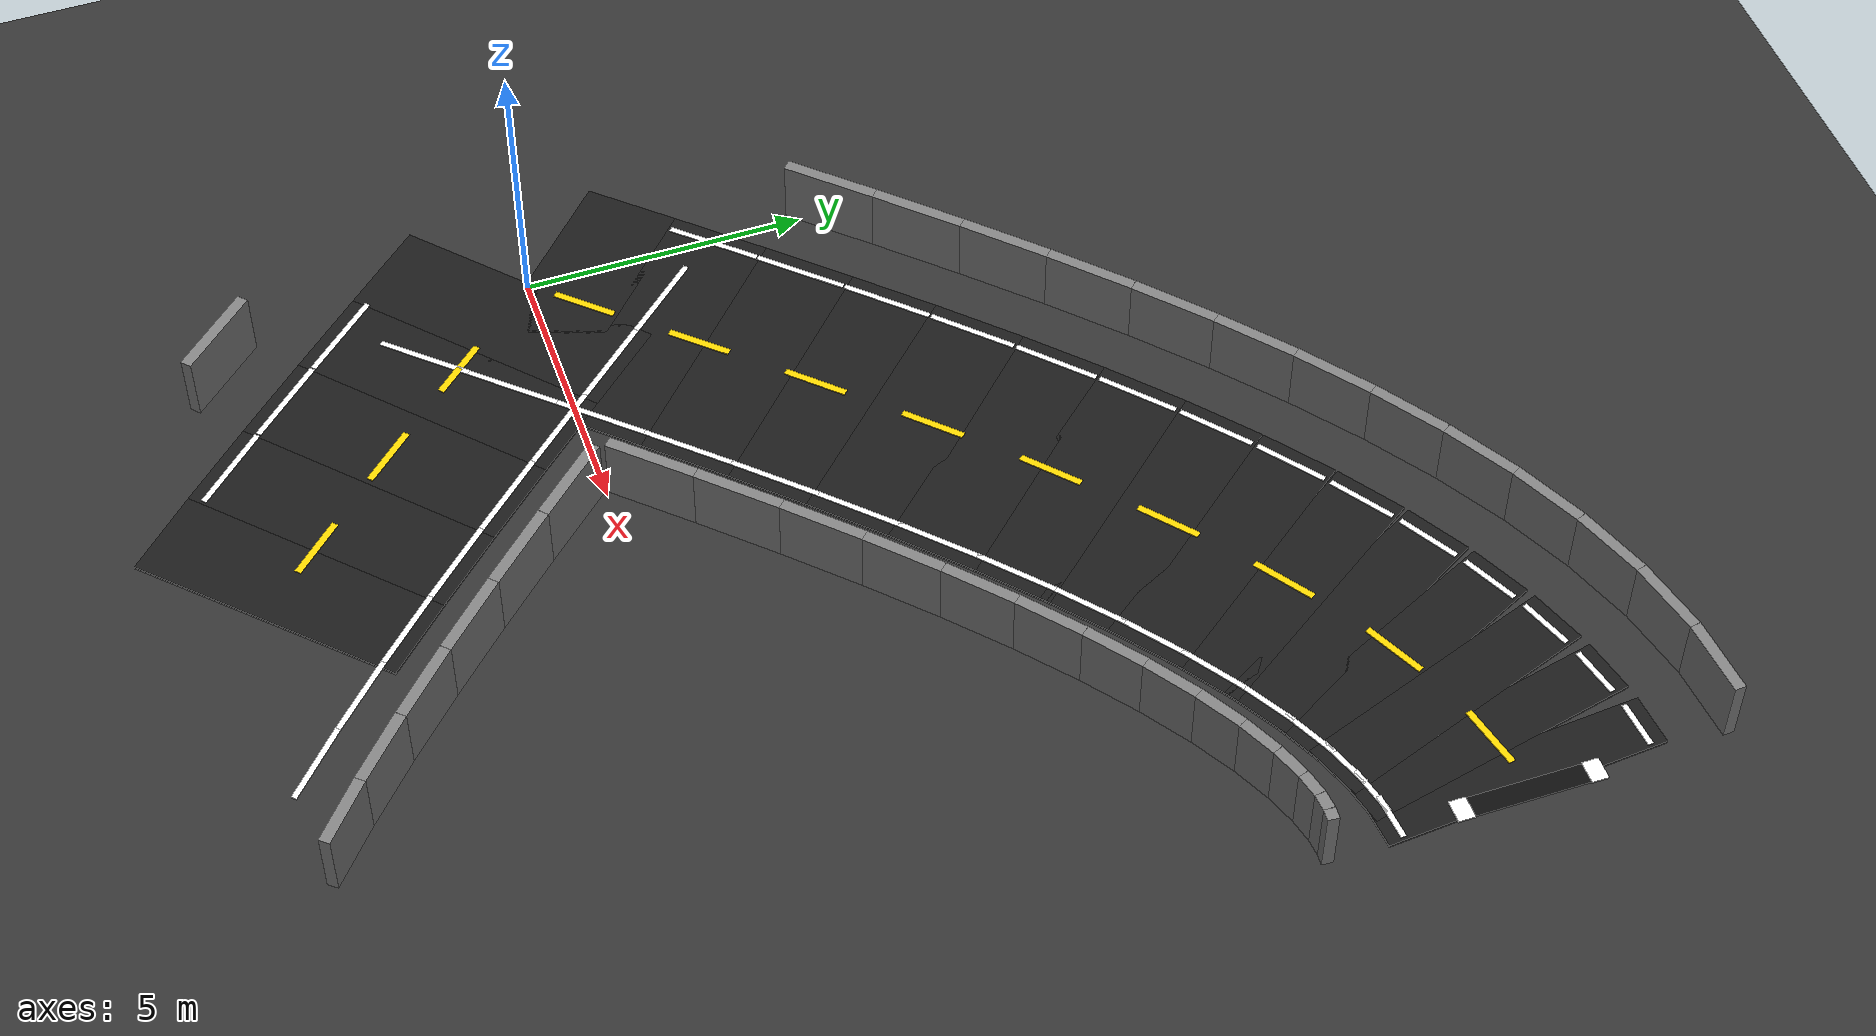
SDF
<sdf version="1.6">
 <world name="adas_figure8_circuit">
  <model name="ground">
   <static>true</static>
   <link name="link">
    <collision name="collision">
     <geometry><plane><normal>0 0 1</normal><size>80.0 80.0</size></plane></geometry>
    </collision>
    <visual name="visual">
     <geometry><plane><normal>0 0 1</normal><size>80.0 80.0</size></plane></geometry>
     <material><ambient>0.16 0.16 0.16 1</ambient><diffuse>0.20 0.20 0.20 1</diffuse></material>
    </visual>
   </link>
  </model>
  <model name="road_000">
   <static>true</static>
   <pose>0.5757 0.6272 0.025 0 0 0.828166</pose>
   <link name="link">
    <collision name="collision"><geometry><box><size>1.8027 5.000 0.05</size></box></geometry></collision>
    <visual name="visual">
     <geometry><box><size>1.8027 5.000 0.05</size></box></geometry>
     <material><ambient>0.07 0.07 0.07 1</ambient><diffuse>0.10 0.10 0.10 1</diffuse></material>
    </visual>
   </link>
  </model>
  <model name="road_001">
   <static>true</static>
   <pose>1.7255 1.8746 0.025 0 0 0.824044</pose>
   <link name="link">
    <collision name="collision"><geometry><box><size>1.7904 5.000 0.05</size></box></geometry></collision>
    <visual name="visual">
     <geometry><box><size>1.7904 5.000 0.05</size></box></geometry>
     <material><ambient>0.07 0.07 0.07 1</ambient><diffuse>0.10 0.10 0.10 1</diffuse></material>
    </visual>
   </link>
  </model>
  <model name="road_002">
   <static>true</static>
   <pose>2.8706 3.1016 0.025 0 0 0.815676</pose>
   <link name="link">
    <collision name="collision"><geometry><box><size>1.7661 5.000 0.05</size></box></geometry></collision>
    <visual name="visual">
     <geometry><box><size>1.7661 5.000 0.05</size></box></geometry>
     <material><ambient>0.07 0.07 0.07 1</ambient><diffuse>0.10 0.10 0.10 1</diffuse></material>
    </visual>
   </link>
  </model>
  <model name="road_003">
   <static>true</static>
   <pose>4.0078 4.2945 0.025 0 0 0.802808</pose>
   <link name="link">
    <collision name="collision"><geometry><box><size>1.7302 5.000 0.05</size></box></geometry></collision>
    <visual name="visual">
     <geometry><box><size>1.7302 5.000 0.05</size></box></geometry>
     <material><ambient>0.07 0.07 0.07 1</ambient><diffuse>0.10 0.10 0.10 1</diffuse></material>
    </visual>
   </link>
  </model>
  <model name="road_004">
   <static>true</static>
   <pose>5.1340 5.4404 0.025 0 0 0.785040</pose>
   <link name="link">
    <collision name="collision"><geometry><box><size>1.6833 5.000 0.05</size></box></geometry></collision>
    <visual name="visual">
     <geometry><box><size>1.6833 5.000 0.05</size></box></geometry>
     <material><ambient>0.07 0.07 0.07 1</ambient><diffuse>0.10 0.10 0.10 1</diffuse></material>
    </visual>
   </link>
  </model>
  <model name="road_005">
   <static>true</static>
   <pose>6.2462 6.5267 0.025 0 0 0.761799</pose>
   <link name="link">
    <collision name="collision"><geometry><box><size>1.6262 5.000 0.05</size></box></geometry></collision>
    <visual name="visual">
     <geometry><box><size>1.6262 5.000 0.05</size></box></geometry>
     <material><ambient>0.07 0.07 0.07 1</ambient><diffuse>0.10 0.10 0.10 1</diffuse></material>
    </visual>
   </link>
  </model>
  <model name="road_006">
   <static>true</static>
   <pose>7.3412 7.5415 0.025 0 0 0.732304</pose>
   <link name="link">
    <collision name="collision"><geometry><box><size>1.5600 5.000 0.05</size></box></geometry></collision>
    <visual name="visual">
     <geometry><box><size>1.5600 5.000 0.05</size></box></geometry>
     <material><ambient>0.07 0.07 0.07 1</ambient><diffuse>0.10 0.10 0.10 1</diffuse></material>
    </visual>
   </link>
  </model>
  <model name="road_007">
   <static>true</static>
   <pose>8.4162 8.4737 0.025 0 0 0.695520</pose>
   <link name="link">
    <collision name="collision"><geometry><box><size>1.4861 5.000 0.05</size></box></geometry></collision>
    <visual name="visual">
     <geometry><box><size>1.4861 5.000 0.05</size></box></geometry>
     <material><ambient>0.07 0.07 0.07 1</ambient><diffuse>0.10 0.10 0.10 1</diffuse></material>
    </visual>
   </link>
  </model>
  <model name="road_008">
   <static>true</static>
   <pose>9.4680 9.3130 0.025 0 0 0.650103</pose>
   <link name="link">
    <collision name="collision"><geometry><box><size>1.4060 5.000 0.05</size></box></geometry></collision>
    <visual name="visual">
     <geometry><box><size>1.4060 5.000 0.05</size></box></geometry>
     <material><ambient>0.07 0.07 0.07 1</ambient><diffuse>0.10 0.10 0.10 1</diffuse></material>
    </visual>
   </link>
  </model>
  <model name="road_009">
   <static>true</static>
   <pose>10.4939 10.0503 0.025 0 0 0.594333</pose>
   <link name="link">
    <collision name="collision"><geometry><box><size>1.3217 5.000 0.05</size></box></geometry></collision>
    <visual name="visual">
     <geometry><box><size>1.3217 5.000 0.05</size></box></geometry>
     <material><ambient>0.07 0.07 0.07 1</ambient><diffuse>0.10 0.10 0.10 1</diffuse></material>
    </visual>
   </link>
  </model>
  <model name="road_010">
   <static>true</static>
   <pose>11.4910 10.6774 0.025 0 0 0.526076</pose>
   <link name="link">
    <collision name="collision"><geometry><box><size>1.2356 5.000 0.05</size></box></geometry></collision>
    <visual name="visual">
     <geometry><box><size>1.2356 5.000 0.05</size></box></geometry>
     <material><ambient>0.07 0.07 0.07 1</ambient><diffuse>0.10 0.10 0.10 1</diffuse></material>
    </visual>
   </link>
  </model>
  <model name="road_011">
   <static>true</static>
   <pose>12.4567 11.1876 0.025 0 0 0.442808</pose>
   <link name="link">
    <collision name="collision"><geometry><box><size>1.1505 5.000 0.05</size></box></geometry></collision>
    <visual name="visual">
     <geometry><box><size>1.1505 5.000 0.05</size></box></geometry>
     <material><ambient>0.07 0.07 0.07 1</ambient><diffuse>0.10 0.10 0.10 1</diffuse></material>
    </visual>
   </link>
  </model>
  <model name="road_012">
   <static>true</static>
   <pose>13.3882 11.5752 0.025 0 0 0.341806</pose>
   <link name="link">
    <collision name="collision"><geometry><box><size>1.0699 5.000 0.05</size></box></geometry></collision>
    <visual name="visual">
     <geometry><box><size>1.0699 5.000 0.05</size></box></geometry>
     <material><ambient>0.07 0.07 0.07 1</ambient><diffuse>0.10 0.10 0.10 1</diffuse></material>
    </visual>
   </link>
  </model>
  <model name="road_013">
   <static>true</static>
   <pose>14.2830 11.8360 0.025 0 0 0.220696</pose>
   <link name="link">
    <collision name="collision"><geometry><box><size>0.9976 5.000 0.05</size></box></geometry></collision>
    <visual name="visual">
     <geometry><box><size>0.9976 5.000 0.05</size></box></geometry>
     <material><ambient>0.07 0.07 0.07 1</ambient><diffuse>0.10 0.10 0.10 1</diffuse></material>
    </visual>
   </link>
  </model>
  <model name="road_014">
   <static>true</static>
   <pose>15.1386 11.9671 0.025 0 0 0.078521</pose>
   <link name="link">
    <collision name="collision"><geometry><box><size>0.9381 5.000 0.05</size></box></geometry></collision>
    <visual name="visual">
     <geometry><box><size>0.9381 5.000 0.05</size></box></geometry>
     <material><ambient>0.07 0.07 0.07 1</ambient><diffuse>0.10 0.10 0.10 1</diffuse></material>
    </visual>
   </link>
  </model>
  <model name="road_055">
   <static>true</static>
   <pose>5.1340 -5.4404 0.025 0 0 2.356552</pose>
   <link name="link">
    <collision name="collision"><geometry><box><size>1.6833 5.000 0.05</size></box></geometry></collision>
    <visual name="visual">
     <geometry><box><size>1.6833 5.000 0.05</size></box></geometry>
     <material><ambient>0.07 0.07 0.07 1</ambient><diffuse>0.10 0.10 0.10 1</diffuse></material>
    </visual>
   </link>
  </model>
  <model name="road_056">
   <static>true</static>
   <pose>4.0078 -4.2945 0.025 0 0 2.338784</pose>
   <link name="link">
    <collision name="collision"><geometry><box><size>1.7302 5.000 0.05</size></box></geometry></collision>
    <visual name="visual">
     <geometry><box><size>1.7302 5.000 0.05</size></box></geometry>
     <material><ambient>0.07 0.07 0.07 1</ambient><diffuse>0.10 0.10 0.10 1</diffuse></material>
    </visual>
   </link>
  </model>
  <model name="road_057">
   <static>true</static>
   <pose>2.8706 -3.1016 0.025 0 0 2.325917</pose>
   <link name="link">
    <collision name="collision"><geometry><box><size>1.7661 5.000 0.05</size></box></geometry></collision>
    <visual name="visual">
     <geometry><box><size>1.7661 5.000 0.05</size></box></geometry>
     <material><ambient>0.07 0.07 0.07 1</ambient><diffuse>0.10 0.10 0.10 1</diffuse></material>
    </visual>
   </link>
  </model>
  <model name="road_058">
   <static>true</static>
   <pose>1.7255 -1.8746 0.025 0 0 2.317549</pose>
   <link name="link">
    <collision name="collision"><geometry><box><size>1.7904 5.000 0.05</size></box></geometry></collision>
    <visual name="visual">
     <geometry><box><size>1.7904 5.000 0.05</size></box></geometry>
     <material><ambient>0.07 0.07 0.07 1</ambient><diffuse>0.10 0.10 0.10 1</diffuse></material>
    </visual>
   </link>
  </model>
  <model name="road_059">
   <static>true</static>
   <pose>0.5757 -0.6272 0.025 0 0 2.313427</pose>
   <link name="link">
    <collision name="collision"><geometry><box><size>1.8027 5.000 0.05</size></box></geometry></collision>
    <visual name="visual">
     <geometry><box><size>1.8027 5.000 0.05</size></box></geometry>
     <material><ambient>0.07 0.07 0.07 1</ambient><diffuse>0.10 0.10 0.10 1</diffuse></material>
    </visual>
   </link>
  </model>
  <model name="center_dash_000">
   <static>true</static>
   <pose>0.7523 0.8196 0.058 0 0 0.828166</pose>
   <link name="link">
    <visual name="visual">
     <geometry><box><size>1.150 0.12 0.02</size></box></geometry>
     <material><ambient>1 0.82 0 1</ambient><diffuse>1 0.82 0 1</diffuse></material>
    </visual>
   </link>
  </model>
  <model name="center_dash_001">
   <static>true</static>
   <pose>2.2620 2.4543 0.058 0 0 0.824044</pose>
   <link name="link">
    <visual name="visual">
     <geometry><box><size>1.150 0.12 0.02</size></box></geometry>
     <material><ambient>1 0.82 0 1</ambient><diffuse>1 0.82 0 1</diffuse></material>
    </visual>
   </link>
  </model>
  <model name="center_dash_002">
   <static>true</static>
   <pose>3.7914 4.0704 0.058 0 0 0.802808</pose>
   <link name="link">
    <visual name="visual">
     <geometry><box><size>1.150 0.12 0.02</size></box></geometry>
     <material><ambient>1 0.82 0 1</ambient><diffuse>1 0.82 0 1</diffuse></material>
    </visual>
   </link>
  </model>
  <model name="center_dash_003">
   <static>true</static>
   <pose>5.3511 5.6573 0.058 0 0 0.785040</pose>
   <link name="link">
    <visual name="visual">
     <geometry><box><size>1.150 0.12 0.02</size></box></geometry>
     <material><ambient>1 0.82 0 1</ambient><diffuse>1 0.82 0 1</diffuse></material>
    </visual>
   </link>
  </model>
  <model name="center_dash_004">
   <static>true</static>
   <pose>6.9576 7.1966 0.058 0 0 0.732304</pose>
   <link name="link">
    <visual name="visual">
     <geometry><box><size>1.150 0.12 0.02</size></box></geometry>
     <material><ambient>1 0.82 0 1</ambient><diffuse>1 0.82 0 1</diffuse></material>
    </visual>
   </link>
  </model>
  <model name="center_dash_005">
   <static>true</static>
   <pose>8.6358 8.6570 0.058 0 0 0.695520</pose>
   <link name="link">
    <visual name="visual">
     <geometry><box><size>1.150 0.12 0.02</size></box></geometry>
     <material><ambient>1 0.82 0 1</ambient><diffuse>1 0.82 0 1</diffuse></material>
    </visual>
   </link>
  </model>
  <model name="center_dash_006">
   <static>true</static>
   <pose>10.4122 9.9951 0.058 0 0 0.594333</pose>
   <link name="link">
    <visual name="visual">
     <geometry><box><size>1.150 0.12 0.02</size></box></geometry>
     <material><ambient>1 0.82 0 1</ambient><diffuse>1 0.82 0 1</diffuse></material>
    </visual>
   </link>
  </model>
  <model name="center_dash_007">
   <static>true</static>
   <pose>12.3255 11.1254 0.058 0 0 0.442808</pose>
   <link name="link">
    <visual name="visual">
     <geometry><box><size>1.150 0.12 0.02</size></box></geometry>
     <material><ambient>1 0.82 0 1</ambient><diffuse>1 0.82 0 1</diffuse></material>
    </visual>
   </link>
  </model>
  <model name="center_dash_008">
   <static>true</static>
   <pose>14.4156 11.8658 0.058 0 0 0.220696</pose>
   <link name="link">
    <visual name="visual">
     <geometry><box><size>1.150 0.12 0.02</size></box></geometry>
     <material><ambient>1 0.82 0 1</ambient><diffuse>1 0.82 0 1</diffuse></material>
    </visual>
   </link>
  </model>
  <model name="center_dash_028">
   <static>true</static>
   <pose>4.5643 -4.8707 0.058 0 0 2.338784</pose>
   <link name="link">
    <visual name="visual">
     <geometry><box><size>1.150 0.12 0.02</size></box></geometry>
     <material><ambient>1 0.82 0 1</ambient><diffuse>1 0.82 0 1</diffuse></material>
    </visual>
   </link>
  </model>
  <model name="center_dash_029">
   <static>true</static>
   <pose>3.0242 -3.2647 0.058 0 0 2.325917</pose>
   <link name="link">
    <visual name="visual">
     <geometry><box><size>1.150 0.12 0.02</size></box></geometry>
     <material><ambient>1 0.82 0 1</ambient><diffuse>1 0.82 0 1</diffuse></material>
    </visual>
   </link>
  </model>
  <model name="center_dash_030">
   <static>true</static>
   <pose>1.5063 -1.6378 0.058 0 0 2.317549</pose>
   <link name="link">
    <visual name="visual">
     <geometry><box><size>1.150 0.12 0.02</size></box></geometry>
     <material><ambient>1 0.82 0 1</ambient><diffuse>1 0.82 0 1</diffuse></material>
    </visual>
   </link>
  </model>
  <model name="edge_left_001">
   <static>true</static>
   <pose>0.0963 3.3826 0.058 0 0 0.824044</pose>
   <link name="link">
    <visual name="visual">
     <geometry><box><size>1.6904 0.10 0.02</size></box></geometry>
     <material><ambient>0.95 0.95 0.95 1</ambient><diffuse>0.95 0.95 0.95 1</diffuse></material>
    </visual>
   </link>
  </model>
  <model name="edge_left_002">
   <static>true</static>
   <pose>1.2540 4.6231 0.058 0 0 0.815676</pose>
   <link name="link">
    <visual name="visual">
     <geometry><box><size>1.6661 0.10 0.02</size></box></geometry>
     <material><ambient>0.95 0.95 0.95 1</ambient><diffuse>0.95 0.95 0.95 1</diffuse></material>
    </visual>
   </link>
  </model>
  <model name="edge_left_003">
   <static>true</static>
   <pose>2.4109 5.8367 0.058 0 0 0.802808</pose>
   <link name="link">
    <visual name="visual">
     <geometry><box><size>1.6302 0.10 0.02</size></box></geometry>
     <material><ambient>0.95 0.95 0.95 1</ambient><diffuse>0.95 0.95 0.95 1</diffuse></material>
    </visual>
   </link>
  </model>
  <model name="edge_left_004">
   <static>true</static>
   <pose>3.5648 7.0108 0.058 0 0 0.785040</pose>
   <link name="link">
    <visual name="visual">
     <geometry><box><size>1.5833 0.10 0.02</size></box></geometry>
     <material><ambient>0.95 0.95 0.95 1</ambient><diffuse>0.95 0.95 0.95 1</diffuse></material>
    </visual>
   </link>
  </model>
  <model name="edge_left_005">
   <static>true</static>
   <pose>4.7139 8.1331 0.058 0 0 0.761799</pose>
   <link name="link">
    <visual name="visual">
     <geometry><box><size>1.5262 0.10 0.02</size></box></geometry>
     <material><ambient>0.95 0.95 0.95 1</ambient><diffuse>0.95 0.95 0.95 1</diffuse></material>
    </visual>
   </link>
  </model>
  <model name="edge_left_006">
   <static>true</static>
   <pose>5.8570 9.1924 0.058 0 0 0.732304</pose>
   <link name="link">
    <visual name="visual">
     <geometry><box><size>1.4600 0.10 0.02</size></box></geometry>
     <material><ambient>0.95 0.95 0.95 1</ambient><diffuse>0.95 0.95 0.95 1</diffuse></material>
    </visual>
   </link>
  </model>
  <model name="edge_left_007">
   <static>true</static>
   <pose>6.9936 10.1780 0.058 0 0 0.695520</pose>
   <link name="link">
    <visual name="visual">
     <geometry><box><size>1.3861 0.10 0.02</size></box></geometry>
     <material><ambient>0.95 0.95 0.95 1</ambient><diffuse>0.95 0.95 0.95 1</diffuse></material>
    </visual>
   </link>
  </model>
  <model name="edge_left_008">
   <static>true</static>
   <pose>8.1243 11.0801 0.058 0 0 0.650103</pose>
   <link name="link">
    <visual name="visual">
     <geometry><box><size>1.3060 0.10 0.02</size></box></geometry>
     <material><ambient>0.95 0.95 0.95 1</ambient><diffuse>0.95 0.95 0.95 1</diffuse></material>
    </visual>
   </link>
  </model>
  <model name="edge_left_009">
   <static>true</static>
   <pose>9.2508 11.8896 0.058 0 0 0.594333</pose>
   <link name="link">
    <visual name="visual">
     <geometry><box><size>1.2217 0.10 0.02</size></box></geometry>
     <material><ambient>0.95 0.95 0.95 1</ambient><diffuse>0.95 0.95 0.95 1</diffuse></material>
    </visual>
   </link>
  </model>
  <model name="edge_left_010">
   <static>true</static>
   <pose>10.3763 12.5972 0.058 0 0 0.526076</pose>
   <link name="link">
    <visual name="visual">
     <geometry><box><size>1.1356 0.10 0.02</size></box></geometry>
     <material><ambient>0.95 0.95 0.95 1</ambient><diffuse>0.95 0.95 0.95 1</diffuse></material>
    </visual>
   </link>
  </model>
  <model name="edge_left_011">
   <static>true</static>
   <pose>11.5054 13.1935 0.058 0 0 0.442808</pose>
   <link name="link">
    <visual name="visual">
     <geometry><box><size>1.0505 0.10 0.02</size></box></geometry>
     <material><ambient>0.95 0.95 0.95 1</ambient><diffuse>0.95 0.95 0.95 1</diffuse></material>
    </visual>
   </link>
  </model>
  <model name="edge_left_012">
   <static>true</static>
   <pose>12.6440 13.6668 0.058 0 0 0.341806</pose>
   <link name="link">
    <visual name="visual">
     <geometry><box><size>0.9699 0.10 0.02</size></box></geometry>
     <material><ambient>0.95 0.95 0.95 1</ambient><diffuse>0.95 0.95 0.95 1</diffuse></material>
    </visual>
   </link>
  </model>
  <model name="edge_left_013">
   <static>true</static>
   <pose>13.7970 14.0022 0.058 0 0 0.220696</pose>
   <link name="link">
    <visual name="visual">
     <geometry><box><size>0.8976 0.10 0.02</size></box></geometry>
     <material><ambient>0.95 0.95 0.95 1</ambient><diffuse>0.95 0.95 0.95 1</diffuse></material>
    </visual>
   </link>
  </model>
  <model name="edge_left_014">
   <static>true</static>
   <pose>14.9645 14.1803 0.058 0 0 0.078521</pose>
   <link name="link">
    <visual name="visual">
     <geometry><box><size>0.8381 0.10 0.02</size></box></geometry>
     <material><ambient>0.95 0.95 0.95 1</ambient><diffuse>0.95 0.95 0.95 1</diffuse></material>
    </visual>
   </link>
  </model>
  <model name="edge_left_056">
   <static>true</static>
   <pose>2.4109 -5.8367 0.058 0 0 2.338784</pose>
   <link name="link">
    <visual name="visual">
     <geometry><box><size>1.6302 0.10 0.02</size></box></geometry>
     <material><ambient>0.95 0.95 0.95 1</ambient><diffuse>0.95 0.95 0.95 1</diffuse></material>
    </visual>
   </link>
  </model>
  <model name="edge_left_057">
   <static>true</static>
   <pose>1.2540 -4.6231 0.058 0 0 2.325917</pose>
   <link name="link">
    <visual name="visual">
     <geometry><box><size>1.6661 0.10 0.02</size></box></geometry>
     <material><ambient>0.95 0.95 0.95 1</ambient><diffuse>0.95 0.95 0.95 1</diffuse></material>
    </visual>
   </link>
  </model>
  <model name="edge_left_058">
   <static>true</static>
   <pose>0.0963 -3.3826 0.058 0 0 2.317549</pose>
   <link name="link">
    <visual name="visual">
     <geometry><box><size>1.6904 0.10 0.02</size></box></geometry>
     <material><ambient>0.95 0.95 0.95 1</ambient><diffuse>0.95 0.95 0.95 1</diffuse></material>
    </visual>
   </link>
  </model>
  <model name="edge_right_000">
   <static>true</static>
   <pose>2.2112 -0.8741 0.058 0 0 0.828166</pose>
   <link name="link">
    <visual name="visual">
     <geometry><box><size>1.7027 0.10 0.02</size></box></geometry>
     <material><ambient>0.95 0.95 0.95 1</ambient><diffuse>0.95 0.95 0.95 1</diffuse></material>
    </visual>
   </link>
  </model>
  <model name="edge_right_001">
   <static>true</static>
   <pose>3.3548 0.3667 0.058 0 0 0.824044</pose>
   <link name="link">
    <visual name="visual">
     <geometry><box><size>1.6904 0.10 0.02</size></box></geometry>
     <material><ambient>0.95 0.95 0.95 1</ambient><diffuse>0.95 0.95 0.95 1</diffuse></material>
    </visual>
   </link>
  </model>
  <model name="edge_right_002">
   <static>true</static>
   <pose>4.4872 1.5800 0.058 0 0 0.815676</pose>
   <link name="link">
    <visual name="visual">
     <geometry><box><size>1.6661 0.10 0.02</size></box></geometry>
     <material><ambient>0.95 0.95 0.95 1</ambient><diffuse>0.95 0.95 0.95 1</diffuse></material>
    </visual>
   </link>
  </model>
  <model name="edge_right_003">
   <static>true</static>
   <pose>5.6047 2.7523 0.058 0 0 0.802808</pose>
   <link name="link">
    <visual name="visual">
     <geometry><box><size>1.6302 0.10 0.02</size></box></geometry>
     <material><ambient>0.95 0.95 0.95 1</ambient><diffuse>0.95 0.95 0.95 1</diffuse></material>
    </visual>
   </link>
  </model>
  <model name="edge_right_004">
   <static>true</static>
   <pose>6.7033 3.8701 0.058 0 0 0.785040</pose>
   <link name="link">
    <visual name="visual">
     <geometry><box><size>1.5833 0.10 0.02</size></box></geometry>
     <material><ambient>0.95 0.95 0.95 1</ambient><diffuse>0.95 0.95 0.95 1</diffuse></material>
    </visual>
   </link>
  </model>
  <model name="edge_right_005">
   <static>true</static>
   <pose>7.7785 4.9203 0.058 0 0 0.761799</pose>
   <link name="link">
    <visual name="visual">
     <geometry><box><size>1.5262 0.10 0.02</size></box></geometry>
     <material><ambient>0.95 0.95 0.95 1</ambient><diffuse>0.95 0.95 0.95 1</diffuse></material>
    </visual>
   </link>
  </model>
  <model name="edge_right_006">
   <static>true</static>
   <pose>8.8255 5.8906 0.058 0 0 0.732304</pose>
   <link name="link">
    <visual name="visual">
     <geometry><box><size>1.4600 0.10 0.02</size></box></geometry>
     <material><ambient>0.95 0.95 0.95 1</ambient><diffuse>0.95 0.95 0.95 1</diffuse></material>
    </visual>
   </link>
  </model>
  <model name="edge_right_007">
   <static>true</static>
   <pose>9.8387 6.7693 0.058 0 0 0.695520</pose>
   <link name="link">
    <visual name="visual">
     <geometry><box><size>1.3861 0.10 0.02</size></box></geometry>
     <material><ambient>0.95 0.95 0.95 1</ambient><diffuse>0.95 0.95 0.95 1</diffuse></material>
    </visual>
   </link>
  </model>
  <model name="edge_right_008">
   <static>true</static>
   <pose>10.8117 7.5458 0.058 0 0 0.650103</pose>
   <link name="link">
    <visual name="visual">
     <geometry><box><size>1.3060 0.10 0.02</size></box></geometry>
     <material><ambient>0.95 0.95 0.95 1</ambient><diffuse>0.95 0.95 0.95 1</diffuse></material>
    </visual>
   </link>
  </model>
  <model name="edge_right_009">
   <static>true</static>
   <pose>11.7370 8.2109 0.058 0 0 0.594333</pose>
   <link name="link">
    <visual name="visual">
     <geometry><box><size>1.2217 0.10 0.02</size></box></geometry>
     <material><ambient>0.95 0.95 0.95 1</ambient><diffuse>0.95 0.95 0.95 1</diffuse></material>
    </visual>
   </link>
  </model>
  <model name="edge_right_010">
   <static>true</static>
   <pose>12.6058 8.7576 0.058 0 0 0.526076</pose>
   <link name="link">
    <visual name="visual">
     <geometry><box><size>1.1356 0.10 0.02</size></box></geometry>
     <material><ambient>0.95 0.95 0.95 1</ambient><diffuse>0.95 0.95 0.95 1</diffuse></material>
    </visual>
   </link>
  </model>
  <model name="edge_right_011">
   <static>true</static>
   <pose>13.4079 9.1817 0.058 0 0 0.442808</pose>
   <link name="link">
    <visual name="visual">
     <geometry><box><size>1.0505 0.10 0.02</size></box></geometry>
     <material><ambient>0.95 0.95 0.95 1</ambient><diffuse>0.95 0.95 0.95 1</diffuse></material>
    </visual>
   </link>
  </model>
  <model name="edge_right_012">
   <static>true</static>
   <pose>14.1323 9.4836 0.058 0 0 0.341806</pose>
   <link name="link">
    <visual name="visual">
     <geometry><box><size>0.9699 0.10 0.02</size></box></geometry>
     <material><ambient>0.95 0.95 0.95 1</ambient><diffuse>0.95 0.95 0.95 1</diffuse></material>
    </visual>
   </link>
  </model>
  <model name="edge_right_013">
   <static>true</static>
   <pose>14.7689 9.6699 0.058 0 0 0.220696</pose>
   <link name="link">
    <visual name="visual">
     <geometry><box><size>0.8976 0.10 0.02</size></box></geometry>
     <material><ambient>0.95 0.95 0.95 1</ambient><diffuse>0.95 0.95 0.95 1</diffuse></material>
    </visual>
   </link>
  </model>
  <model name="edge_right_014">
   <static>true</static>
   <pose>15.3127 9.7540 0.058 0 0 0.078521</pose>
   <link name="link">
    <visual name="visual">
     <geometry><box><size>0.8381 0.10 0.02</size></box></geometry>
     <material><ambient>0.95 0.95 0.95 1</ambient><diffuse>0.95 0.95 0.95 1</diffuse></material>
    </visual>
   </link>
  </model>
  <model name="edge_right_053">
   <static>true</static>
   <pose>8.8255 -5.8906 0.058 0 0 2.409289</pose>
   <link name="link">
    <visual name="visual">
     <geometry><box><size>1.4600 0.10 0.02</size></box></geometry>
     <material><ambient>0.95 0.95 0.95 1</ambient><diffuse>0.95 0.95 0.95 1</diffuse></material>
    </visual>
   </link>
  </model>
  <model name="edge_right_054">
   <static>true</static>
   <pose>7.7785 -4.9203 0.058 0 0 2.379794</pose>
   <link name="link">
    <visual name="visual">
     <geometry><box><size>1.5262 0.10 0.02</size></box></geometry>
     <material><ambient>0.95 0.95 0.95 1</ambient><diffuse>0.95 0.95 0.95 1</diffuse></material>
    </visual>
   </link>
  </model>
  <model name="edge_right_055">
   <static>true</static>
   <pose>6.7033 -3.8701 0.058 0 0 2.356552</pose>
   <link name="link">
    <visual name="visual">
     <geometry><box><size>1.5833 0.10 0.02</size></box></geometry>
     <material><ambient>0.95 0.95 0.95 1</ambient><diffuse>0.95 0.95 0.95 1</diffuse></material>
    </visual>
   </link>
  </model>
  <model name="edge_right_056">
   <static>true</static>
   <pose>5.6047 -2.7523 0.058 0 0 2.338784</pose>
   <link name="link">
    <visual name="visual">
     <geometry><box><size>1.6302 0.10 0.02</size></box></geometry>
     <material><ambient>0.95 0.95 0.95 1</ambient><diffuse>0.95 0.95 0.95 1</diffuse></material>
    </visual>
   </link>
  </model>
  <model name="edge_right_057">
   <static>true</static>
   <pose>4.4872 -1.5800 0.058 0 0 2.325917</pose>
   <link name="link">
    <visual name="visual">
     <geometry><box><size>1.6661 0.10 0.02</size></box></geometry>
     <material><ambient>0.95 0.95 0.95 1</ambient><diffuse>0.95 0.95 0.95 1</diffuse></material>
    </visual>
   </link>
  </model>
  <model name="edge_right_058">
   <static>true</static>
   <pose>3.3548 -0.3667 0.058 0 0 2.317549</pose>
   <link name="link">
    <visual name="visual">
     <geometry><box><size>1.6904 0.10 0.02</size></box></geometry>
     <material><ambient>0.95 0.95 0.95 1</ambient><diffuse>0.95 0.95 0.95 1</diffuse></material>
    </visual>
   </link>
  </model>
  <model name="edge_right_059">
   <static>true</static>
   <pose>2.2112 0.8741 0.058 0 0 2.313427</pose>
   <link name="link">
    <visual name="visual">
     <geometry><box><size>1.7027 0.10 0.02</size></box></geometry>
     <material><ambient>0.95 0.95 0.95 1</ambient><diffuse>0.95 0.95 0.95 1</diffuse></material>
    </visual>
   </link>
  </model>
  <model name="edge_right_060">
   <static>true</static>
   <pose>1.0598 2.1284 0.058 0 0 2.313427</pose>
   <link name="link">
    <visual name="visual">
     <geometry><box><size>1.7027 0.10 0.02</size></box></geometry>
     <material><ambient>0.95 0.95 0.95 1</ambient><diffuse>0.95 0.95 0.95 1</diffuse></material>
    </visual>
   </link>
  </model>
  <model name="edge_right_119">
   <static>true</static>
   <pose>1.0598 -2.1284 0.058 0 0 0.828166</pose>
   <link name="link">
    <visual name="visual">
     <geometry><box><size>1.7027 0.10 0.02</size></box></geometry>
     <material><ambient>0.95 0.95 0.95 1</ambient><diffuse>0.95 0.95 0.95 1</diffuse></material>
    </visual>
   </link>
  </model>
  <model name="start_finish_gate">
   <static>true</static>
   <pose>15.56 12.0 0.061 0 0 0</pose>
   <link name="link">
    <visual name="line_white">
     <geometry><box><size>0.35 2.45 0.025</size></box></geometry>
     <material><ambient>1 1 1 1</ambient><diffuse>1 1 1 1</diffuse></material>
    </visual>
    <visual name="line_black">
     <pose>0 0.0 0.003 0 0 0</pose>
     <geometry><box><size>0.37 2.10 0.026</size></box></geometry>
     <material><ambient>0.05 0.05 0.05 1</ambient><diffuse>0.05 0.05 0.05 1</diffuse></material>
    </visual>
    <visual name="marker_left">
     <pose>0 -1.15 0.004 0 0 0</pose>
     <geometry><box><size>0.40 0.30 0.03</size></box></geometry>
     <material><ambient>1 1 1 1</ambient><diffuse>1 1 1 1</diffuse></material>
    </visual>
    <visual name="marker_right">
     <pose>0 1.15 0.004 0 0 0</pose>
     <geometry><box><size>0.40 0.30 0.03</size></box></geometry>
     <material><ambient>1 1 1 1</ambient><diffuse>1 1 1 1</diffuse></material>
    </visual>
   </link>
  </model>
  <model name="slam_barrier_left_002">
   <static>true</static>
   <pose>0.3229 5.5014 0.6000
        0 0 0.815667</pose>
   <link name="link">
    <collision name="collision">
     <geometry><box><size>1.7032
                0.2000
                1.2000</size></box></geometry>
    </collision>
    <visual name="visual">
     <geometry><box><size>1.7032
                0.2000
                1.2000</size></box></geometry>
     <material><ambient>0.4 0.4 0.4 1</ambient><diffuse>0.5 0.5 0.5 1</diffuse></material>
    </visual>
   </link>
  </model>
  <model name="slam_barrier_right_002">
   <static>true</static>
   <pose>5.4183 0.7018 0.6000
        0 0 0.815685</pose>
   <link name="link">
    <collision name="collision">
     <geometry><box><size>1.6291
                0.2000
                1.2000</size></box></geometry>
    </collision>
    <visual name="visual">
     <geometry><box><size>1.6291
                0.2000
                1.2000</size></box></geometry>
     <material><ambient>0.4 0.4 0.4 1</ambient><diffuse>0.5 0.5 0.5 1</diffuse></material>
    </visual>
   </link>
  </model>
  <model name="slam_barrier_left_003">
   <static>true</static>
   <pose>1.4914 6.7270 0.6000
        0 0 0.802794</pose>
   <link name="link">
    <collision name="collision">
     <geometry><box><size>1.6836
                0.2000
                1.2000</size></box></geometry>
    </collision>
    <visual name="visual">
     <geometry><box><size>1.6836
                0.2000
                1.2000</size></box></geometry>
     <material><ambient>0.4 0.4 0.4 1</ambient><diffuse>0.5 0.5 0.5 1</diffuse></material>
    </visual>
   </link>
  </model>
  <model name="slam_barrier_right_003">
   <static>true</static>
   <pose>6.5242 1.8621 0.6000
        0 0 0.802823</pose>
   <link name="link">
    <collision name="collision">
     <geometry><box><size>1.5768
                0.2000
                1.2000</size></box></geometry>
    </collision>
    <visual name="visual">
     <geometry><box><size>1.5768
                0.2000
                1.2000</size></box></geometry>
     <material><ambient>0.4 0.4 0.4 1</ambient><diffuse>0.5 0.5 0.5 1</diffuse></material>
    </visual>
   </link>
  </model>
  <model name="slam_barrier_left_004">
   <static>true</static>
   <pose>2.6614 7.9173 0.6000
        0 0 0.785018</pose>
   <link name="link">
    <collision name="collision">
     <geometry><box><size>1.6548
                0.2000
                1.2000</size></box></geometry>
    </collision>
    <visual name="visual">
     <geometry><box><size>1.6548
                0.2000
                1.2000</size></box></geometry>
     <material><ambient>0.4 0.4 0.4 1</ambient><diffuse>0.5 0.5 0.5 1</diffuse></material>
    </visual>
   </link>
  </model>
  <model name="slam_barrier_right_004">
   <static>true</static>
   <pose>7.6066 2.9635 0.6000
        0 0 0.785064</pose>
   <link name="link">
    <collision name="collision">
     <geometry><box><size>1.5118
                0.2000
                1.2000</size></box></geometry>
    </collision>
    <visual name="visual">
     <geometry><box><size>1.5118
                0.2000
                1.2000</size></box></geometry>
     <material><ambient>0.4 0.4 0.4 1</ambient><diffuse>0.5 0.5 0.5 1</diffuse></material>
    </visual>
   </link>
  </model>
  <model name="slam_barrier_left_005">
   <static>true</static>
   <pose>3.8322 9.0605 0.6000
        0 0 0.761764</pose>
   <link name="link">
    <collision name="collision">
     <geometry><box><size>1.6181
                0.2000
                1.2000</size></box></geometry>
    </collision>
    <visual name="visual">
     <geometry><box><size>1.6181
                0.2000
                1.2000</size></box></geometry>
     <material><ambient>0.4 0.4 0.4 1</ambient><diffuse>0.5 0.5 0.5 1</diffuse></material>
    </visual>
   </link>
  </model>
  <model name="slam_barrier_right_005">
   <static>true</static>
   <pose>8.6602 3.9929 0.6000
        0 0 0.761838</pose>
   <link name="link">
    <collision name="collision">
     <geometry><box><size>1.4343
                0.2000
                1.2000</size></box></geometry>
    </collision>
    <visual name="visual">
     <geometry><box><size>1.4343
                0.2000
                1.2000</size></box></geometry>
     <material><ambient>0.4 0.4 0.4 1</ambient><diffuse>0.5 0.5 0.5 1</diffuse></material>
    </visual>
   </link>
  </model>
  <model name="slam_barrier_left_006">
   <static>true</static>
   <pose>5.0034 10.1456 0.6000
        0 0 0.732250</pose>
   <link name="link">
    <collision name="collision">
     <geometry><box><size>1.5755
                0.2000
                1.2000</size></box></geometry>
    </collision>
    <visual name="visual">
     <geometry><box><size>1.5755
                0.2000
                1.2000</size></box></geometry>
     <material><ambient>0.4 0.4 0.4 1</ambient><diffuse>0.5 0.5 0.5 1</diffuse></material>
    </visual>
   </link>
  </model>
  <model name="slam_barrier_right_006">
   <static>true</static>
   <pose>9.6790 4.9374 0.6000
        0 0 0.732367</pose>
   <link name="link">
    <collision name="collision">
     <geometry><box><size>1.3445
                0.2000
                1.2000</size></box></geometry>
    </collision>
    <visual name="visual">
     <geometry><box><size>1.3445
                0.2000
                1.2000</size></box></geometry>
     <material><ambient>0.4 0.4 0.4 1</ambient><diffuse>0.5 0.5 0.5 1</diffuse></material>
    </visual>
   </link>
  </model>
  <model name="slam_barrier_left_007">
   <static>true</static>
   <pose>6.1763 11.1621 0.6000
        0 0 0.695435</pose>
   <link name="link">
    <collision name="collision">
     <geometry><box><size>1.5293
                0.2000
                1.2000</size></box></geometry>
    </collision>
    <visual name="visual">
     <geometry><box><size>1.5293
                0.2000
                1.2000</size></box></geometry>
     <material><ambient>0.4 0.4 0.4 1</ambient><diffuse>0.5 0.5 0.5 1</diffuse></material>
    </visual>
   </link>
  </model>
  <model name="slam_barrier_right_007">
   <static>true</static>
   <pose>10.6560 5.7852 0.6000
        0 0 0.695625</pose>
   <link name="link">
    <collision name="collision">
     <geometry><box><size>1.2429
                0.2000
                1.2000</size></box></geometry>
    </collision>
    <visual name="visual">
     <geometry><box><size>1.2429
                0.2000
                1.2000</size></box></geometry>
     <material><ambient>0.4 0.4 0.4 1</ambient><diffuse>0.5 0.5 0.5 1</diffuse></material>
    </visual>
   </link>
  </model>
  <model name="slam_barrier_left_008">
   <static>true</static>
   <pose>7.3534 12.1005 0.6000
        0 0 0.649969</pose>
   <link name="link">
    <collision name="collision">
     <geometry><box><size>1.4822
                0.2000
                1.2000</size></box></geometry>
    </collision>
    <visual name="visual">
     <geometry><box><size>1.4822
                0.2000
                1.2000</size></box></geometry>
     <material><ambient>0.4 0.4 0.4 1</ambient><diffuse>0.5 0.5 0.5 1</diffuse></material>
    </visual>
   </link>
  </model>
  <model name="slam_barrier_right_008">
   <static>true</static>
   <pose>11.5826 6.5254 0.6000
        0 0 0.650279</pose>
   <link name="link">
    <collision name="collision">
     <geometry><box><size>1.1297
                0.2000
                1.2000</size></box></geometry>
    </collision>
    <visual name="visual">
     <geometry><box><size>1.1297
                0.2000
                1.2000</size></box></geometry>
     <material><ambient>0.4 0.4 0.4 1</ambient><diffuse>0.5 0.5 0.5 1</diffuse></material>
    </visual>
   </link>
  </model>
  <model name="slam_barrier_left_009">
   <static>true</static>
   <pose>8.5390 12.9514 0.6000
        0 0 0.594123</pose>
   <link name="link">
    <collision name="collision">
     <geometry><box><size>1.4377
                0.2000
                1.2000</size></box></geometry>
    </collision>
    <visual name="visual">
     <geometry><box><size>1.4377
                0.2000
                1.2000</size></box></geometry>
     <material><ambient>0.4 0.4 0.4 1</ambient><diffuse>0.5 0.5 0.5 1</diffuse></material>
    </visual>
   </link>
  </model>
  <model name="slam_barrier_right_009">
   <static>true</static>
   <pose>12.4488 7.1491 0.6000
        0 0 0.594634</pose>
   <link name="link">
    <collision name="collision">
     <geometry><box><size>1.0057
                0.2000
                1.2000</size></box></geometry>
    </collision>
    <visual name="visual">
     <geometry><box><size>1.0057
                0.2000
                1.2000</size></box></geometry>
     <material><ambient>0.4 0.4 0.4 1</ambient><diffuse>0.5 0.5 0.5 1</diffuse></material>
    </visual>
   </link>
  </model>
  <model name="slam_barrier_left_010">
   <static>true</static>
   <pose>9.7400 13.7050 0.6000
        0 0 0.525751</pose>
   <link name="link">
    <collision name="collision">
     <geometry><box><size>1.3996
                0.2000
                1.2000</size></box></geometry>
    </collision>
    <visual name="visual">
     <geometry><box><size>1.3996
                0.2000
                1.2000</size></box></geometry>
     <material><ambient>0.4 0.4 0.4 1</ambient><diffuse>0.5 0.5 0.5 1</diffuse></material>
    </visual>
   </link>
  </model>
  <model name="slam_barrier_right_010">
   <static>true</static>
   <pose>13.2421 7.6498 0.6000
        0 0 0.526599</pose>
   <link name="link">
    <collision name="collision">
     <geometry><box><size>0.8716
                0.2000
                1.2000</size></box></geometry>
    </collision>
    <visual name="visual">
     <geometry><box><size>0.8716
                0.2000
                1.2000</size></box></geometry>
     <material><ambient>0.4 0.4 0.4 1</ambient><diffuse>0.5 0.5 0.5 1</diffuse></material>
    </visual>
   </link>
  </model>
  <model name="slam_barrier_left_011">
   <static>true</static>
   <pose>10.9652 14.3498 0.6000
        0 0 0.442319</pose>
   <link name="link">
    <collision name="collision">
     <geometry><box><size>1.3718
                0.2000
                1.2000</size></box></geometry>
    </collision>
    <visual name="visual">
     <geometry><box><size>1.3718
                0.2000
                1.2000</size></box></geometry>
     <material><ambient>0.4 0.4 0.4 1</ambient><diffuse>0.5 0.5 0.5 1</diffuse></material>
    </visual>
   </link>
  </model>
  <model name="slam_barrier_right_011">
   <static>true</static>
   <pose>13.9482 8.0254 0.6000
        0 0 0.443727</pose>
   <link name="link">
    <collision name="collision">
     <geometry><box><size>0.7293
                0.2000
                1.2000</size></box></geometry>
    </collision>
    <visual name="visual">
     <geometry><box><size>0.7293
                0.2000
                1.2000</size></box></geometry>
     <material><ambient>0.4 0.4 0.4 1</ambient><diffuse>0.5 0.5 0.5 1</diffuse></material>
    </visual>
   </link>
  </model>
  <model name="slam_barrier_left_012">
   <static>true</static>
   <pose>12.2248 14.8705 0.6000
        0 0 0.341115</pose>
   <link name="link">
    <collision name="collision">
     <geometry><box><size>1.3576
                0.2000
                1.2000</size></box></geometry>
    </collision>
    <visual name="visual">
     <geometry><box><size>1.3576
                0.2000
                1.2000</size></box></geometry>
     <material><ambient>0.4 0.4 0.4 1</ambient><diffuse>0.5 0.5 0.5 1</diffuse></material>
    </visual>
   </link>
  </model>
  <model name="slam_barrier_right_012">
   <static>true</static>
   <pose>14.5516 8.2799 0.6000
        0 0 0.343416</pose>
   <link name="link">
    <collision name="collision">
     <geometry><box><size>0.5821
                0.2000
                1.2000</size></box></geometry>
    </collision>
    <visual name="visual">
     <geometry><box><size>0.5821
                0.2000
                1.2000</size></box></geometry>
     <material><ambient>0.4 0.4 0.4 1</ambient><diffuse>0.5 0.5 0.5 1</diffuse></material>
    </visual>
   </link>
  </model>
  <model name="slam_barrier_left_013">
   <static>true</static>
   <pose>13.5273 15.2457 0.6000
        0 0 0.219819</pose>
   <link name="link">
    <collision name="collision">
     <geometry><box><size>1.3582
                0.2000
                1.2000</size></box></geometry>
    </collision>
    <visual name="visual">
     <geometry><box><size>1.3582
                0.2000
                1.2000</size></box></geometry>
     <material><ambient>0.4 0.4 0.4 1</ambient><diffuse>0.5 0.5 0.5 1</diffuse></material>
    </visual>
   </link>
  </model>
  <model name="slam_barrier_right_013">
   <static>true</static>
   <pose>15.0387 8.4263 0.6000
        0 0 0.223421</pose>
   <link name="link">
    <collision name="collision">
     <geometry><box><size>0.4369
                0.2000
                1.2000</size></box></geometry>
    </collision>
    <visual name="visual">
     <geometry><box><size>0.4369
                0.2000
                1.2000</size></box></geometry>
     <material><ambient>0.4 0.4 0.4 1</ambient><diffuse>0.5 0.5 0.5 1</diffuse></material>
    </visual>
   </link>
  </model>
  <model name="slam_barrier_left_014">
   <static>true</static>
   <pose>14.8732 15.4469 0.6000
        0 0 0.077591</pose>
   <link name="link">
    <collision name="collision">
     <geometry><box><size>1.3704
                0.2000
                1.2000</size></box></geometry>
    </collision>
    <visual name="visual">
     <geometry><box><size>1.3704
                0.2000
                1.2000</size></box></geometry>
     <material><ambient>0.4 0.4 0.4 1</ambient><diffuse>0.5 0.5 0.5 1</diffuse></material>
    </visual>
   </link>
  </model>
  <model name="slam_barrier_right_014">
   <static>true</static>
   <pose>15.4040 8.4874 0.6000
        0 0 0.082687</pose>
   <link name="link">
    <collision name="collision">
     <geometry><box><size>0.3057
                0.2000
                1.2000</size></box></geometry>
    </collision>
    <visual name="visual">
     <geometry><box><size>0.3057
                0.2000
                1.2000</size></box></geometry>
     <material><ambient>0.4 0.4 0.4 1</ambient><diffuse>0.5 0.5 0.5 1</diffuse></material>
    </visual>
   </link>
  </model>
  <model name="slam_barrier_right_015">
   <static>true</static>
   <pose>15.6588 8.4920 0.6000
        0 0 -0.077921</pose>
   <link name="link">
    <collision name="collision">
     <geometry><box><size>0.2055
                0.2000
                1.2000</size></box></geometry>
    </collision>
    <visual name="visual">
     <geometry><box><size>0.2055
                0.2000
                1.2000</size></box></geometry>
     <material><ambient>0.4 0.4 0.4 1</ambient><diffuse>0.5 0.5 0.5 1</diffuse></material>
    </visual>
   </link>
  </model>
  <model name="slam_barrier_right_052">
   <static>true</static>
   <pose>10.6560 -5.7852 0.6000
        0 0 2.445968</pose>
   <link name="link">
    <collision name="collision">
     <geometry><box><size>1.2429
                0.2000
                1.2000</size></box></geometry>
    </collision>
    <visual name="visual">
     <geometry><box><size>1.2429
                0.2000
                1.2000</size></box></geometry>
     <material><ambient>0.4 0.4 0.4 1</ambient><diffuse>0.5 0.5 0.5 1</diffuse></material>
    </visual>
   </link>
  </model>
  <model name="slam_barrier_right_053">
   <static>true</static>
   <pose>9.6790 -4.9374 0.6000
        0 0 2.409226</pose>
   <link name="link">
    <collision name="collision">
     <geometry><box><size>1.3445
                0.2000
                1.2000</size></box></geometry>
    </collision>
    <visual name="visual">
     <geometry><box><size>1.3445
                0.2000
                1.2000</size></box></geometry>
     <material><ambient>0.4 0.4 0.4 1</ambient><diffuse>0.5 0.5 0.5 1</diffuse></material>
    </visual>
   </link>
  </model>
  <model name="slam_barrier_right_054">
   <static>true</static>
   <pose>8.6602 -3.9929 0.6000
        0 0 2.379755</pose>
   <link name="link">
    <collision name="collision">
     <geometry><box><size>1.4343
                0.2000
                1.2000</size></box></geometry>
    </collision>
    <visual name="visual">
     <geometry><box><size>1.4343
                0.2000
                1.2000</size></box></geometry>
     <material><ambient>0.4 0.4 0.4 1</ambient><diffuse>0.5 0.5 0.5 1</diffuse></material>
    </visual>
   </link>
  </model>
  <model name="slam_barrier_right_055">
   <static>true</static>
   <pose>7.6066 -2.9635 0.6000
        0 0 2.356528</pose>
   <link name="link">
    <collision name="collision">
     <geometry><box><size>1.5118
                0.2000
                1.2000</size></box></geometry>
    </collision>
    <visual name="visual">
     <geometry><box><size>1.5118
                0.2000
                1.2000</size></box></geometry>
     <material><ambient>0.4 0.4 0.4 1</ambient><diffuse>0.5 0.5 0.5 1</diffuse></material>
    </visual>
   </link>
  </model>
  <model name="slam_barrier_right_056">
   <static>true</static>
   <pose>6.5242 -1.8621 0.6000
        0 0 2.338769</pose>
   <link name="link">
    <collision name="collision">
     <geometry><box><size>1.5768
                0.2000
                1.2000</size></box></geometry>
    </collision>
    <visual name="visual">
     <geometry><box><size>1.5768
                0.2000
                1.2000</size></box></geometry>
     <material><ambient>0.4 0.4 0.4 1</ambient><diffuse>0.5 0.5 0.5 1</diffuse></material>
    </visual>
   </link>
  </model>
  <model name="slam_barrier_left_057">
   <static>true</static>
   <pose>0.3229 -5.5014 0.6000
        0 0 2.325925</pose>
   <link name="link">
    <collision name="collision">
     <geometry><box><size>1.7032
                0.2000
                1.2000</size></box></geometry>
    </collision>
    <visual name="visual">
     <geometry><box><size>1.7032
                0.2000
                1.2000</size></box></geometry>
     <material><ambient>0.4 0.4 0.4 1</ambient><diffuse>0.5 0.5 0.5 1</diffuse></material>
    </visual>
   </link>
  </model>
  <model name="slam_barrier_right_057">
   <static>true</static>
   <pose>5.4183 -0.7018 0.6000
        0 0 2.325908</pose>
   <link name="link">
    <collision name="collision">
     <geometry><box><size>1.6291
                0.2000
                1.2000</size></box></geometry>
    </collision>
    <visual name="visual">
     <geometry><box><size>1.6291
                0.2000
                1.2000</size></box></geometry>
     <material><ambient>0.4 0.4 0.4 1</ambient><diffuse>0.5 0.5 0.5 1</diffuse></material>
    </visual>
   </link>
  </model>
 </world>
</sdf>
